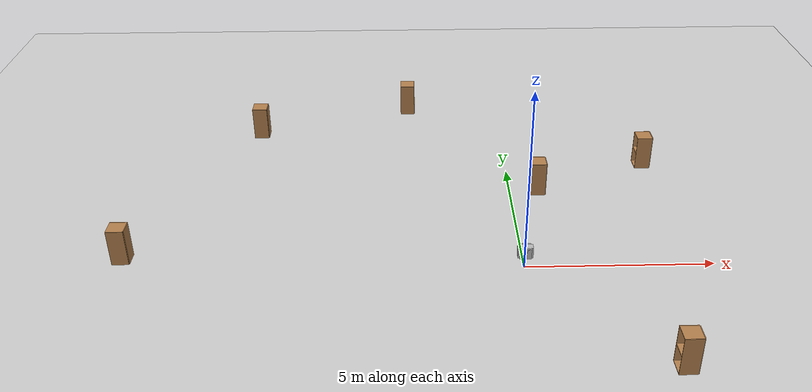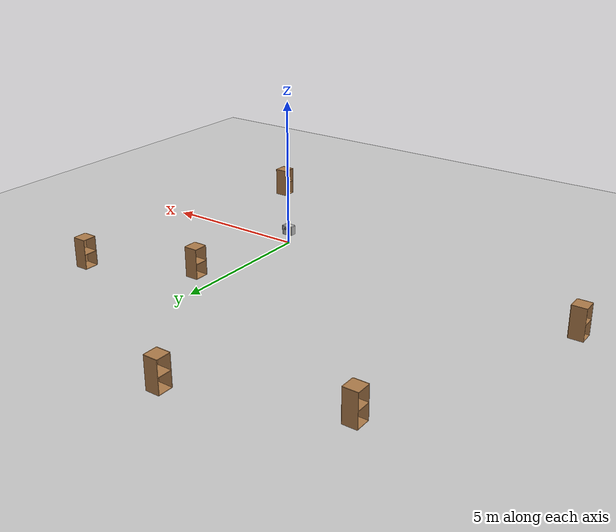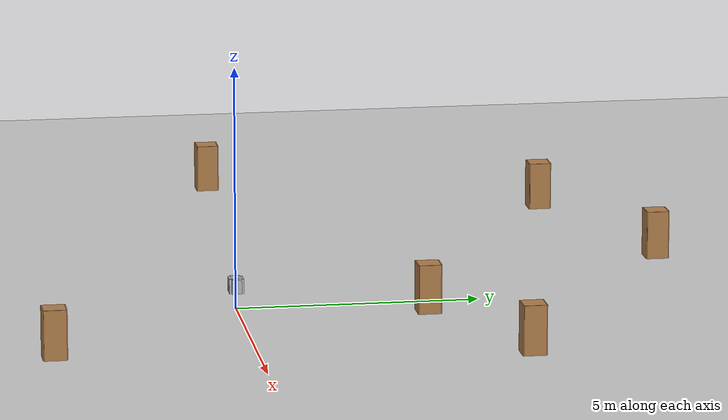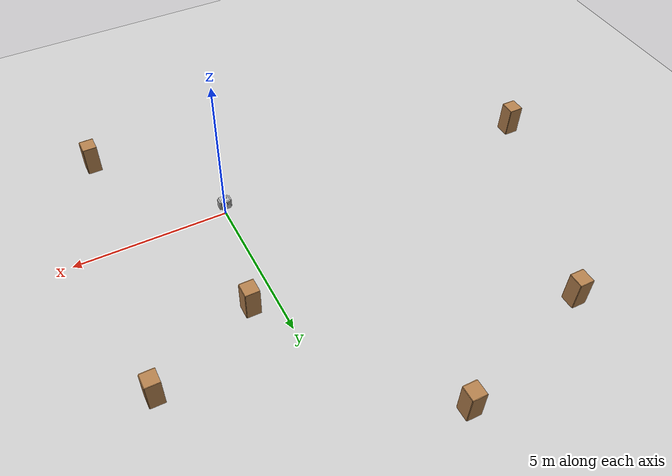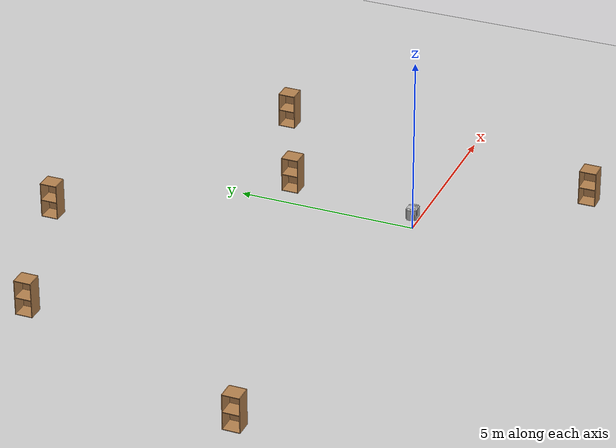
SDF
<sdf version="1.6">
 <world name="default">
  <light name="sun" type="directional">
   <pose>0 0 10 0 -0 0</pose>
   <diffuse>0.8 0.8 0.8 1</diffuse>
   <specular>0.2 0.2 0.2 1</specular>
   <attenuation>
    <range>1000</range>
    <constant>0.9</constant>
    <linear>0.01</linear>
    <quadratic>0.001</quadratic>
   </attenuation>
   <direction>-0.5 0.1 -0.9</direction>
  </light>
  <model name="animated_box">
   <pose>0 0 0.5 0 0 0</pose>
   <link name="link">
    <collision name="animated_box_collision"><geometry><box><size>0.2 0.3 0.3</size></box></geometry></collision>
    <visual name="visual"><geometry><box><size>0.2 0.3 0.3</size></box></geometry></visual>
    <inertial>
     <inertia><ixx>1</ixx><ixy>0</ixy><ixz>0</ixz><iyy>1</iyy><iyz>0</iyz><izz>1</izz></inertia>
     <mass>1</mass>
    </inertial>
    <gravity>0</gravity>
   </link>
   <plugin name="push_animate" filename="libbox_forward_movement7.so"/>
  </model>
  <model name="animated_box2">
   <pose>0 0 0.5 0 0 0</pose>
   <link name="link">
    <collision name="animated_box_collision2"><geometry><box><size>0.3 0.3 0.3</size></box></geometry></collision>
    <visual name="visual"><geometry><box><size>0.3 0.3 0.3</size></box></geometry></visual>
    <inertial>
     <inertia><ixx>1</ixx><ixy>0</ixy><ixz>0</ixz><iyy>1</iyy><iyz>0</iyz><izz>1</izz></inertia>
     <mass>1</mass>
    </inertial>
    <gravity>0</gravity>
   </link>
   <plugin name="push_animate2" filename="libbox_clockwise_movement.so"/>
  </model>
  <model name="animated_box3">
   <pose>0 0 0.5 0 0 0</pose>
   <link name="link">
    <collision name="animated_box_collision3"><geometry><box><size>0.3 0.2 0.3</size></box></geometry></collision>
    <visual name="visual"><geometry><box><size>0.3 0.2 0.3</size></box></geometry></visual>
    <inertial>
     <inertia><ixx>1</ixx><ixy>0</ixy><ixz>0</ixz><iyy>1</iyy><iyz>0</iyz><izz>1</izz></inertia>
     <mass>1</mass>
    </inertial>
    <gravity>0</gravity>
   </link>
   <plugin name="push_animate3" filename="libbox_clockwise_movement2.so"/>
  </model>
  <model name="animated_box4">
   <pose>0 0 0.5 0 0 0</pose>
   <link name="link">
    <collision name="animated_box_collision4"><geometry><box><size>0.4 0.2 0.3</size></box></geometry></collision>
    <visual name="visual"><geometry><box><size>0.4 0.2 0.3</size></box></geometry></visual>
    <inertial>
     <inertia><ixx>1</ixx><ixy>0</ixy><ixz>0</ixz><iyy>1</iyy><iyz>0</iyz><izz>1</izz></inertia>
     <mass>1</mass>
    </inertial>
    <gravity>0</gravity>
   </link>
   <plugin name="push_animate4" filename="libbox_forward_movement12.so"/>
  </model>
  <model name="animated_box5">
   <pose>0 0 0.5 0 0 0</pose>
   <link name="link">
    <collision name="animated_box_collision5"><geometry><box><size>0.3 0.2 0.3</size></box></geometry></collision>
    <visual name="visual"><geometry><box><size>0.3 0.2 0.3</size></box></geometry></visual>
    <inertial>
     <inertia><ixx>1</ixx><ixy>0</ixy><ixz>0</ixz><iyy>1</iyy><iyz>0</iyz><izz>1</izz></inertia>
     <mass>1</mass>
    </inertial>
    <gravity>0</gravity>
   </link>
   <plugin name="push_animate5" filename="libbox_forward_movement10.so"/>
  </model>
  <model name="ground_plane">
   <static>1</static>
   <link name="link">
    <collision name="collision">
     <geometry><plane><normal>0 0 1</normal><size>100 100</size></plane></geometry>
     <surface><friction><ode><mu>100</mu><mu2>50</mu2></ode></friction></surface>
    </collision>
    <visual name="visual">
     <cast_shadows>0</cast_shadows>
     <geometry><plane><normal>0 0 1</normal><size>100 100</size></plane></geometry>
     <material>
      <script><uri>file://media/materials/scripts/gazebo.material</uri><name>Gazebo/Grey</name></script>
     </material>
    </visual>
   </link>
  </model>
  <gravity>0 0 -9.8</gravity>
  <magnetic_field>6e-06 2.3e-05 -4.2e-05</magnetic_field>
  <atmosphere type="adiabatic"/>
  <physics name="default_physics" default="0" type="ode">
   <max_step_size>0.001</max_step_size>
   <real_time_factor>1</real_time_factor>
   <real_time_update_rate>1000</real_time_update_rate>
  </physics>
  <scene><ambient>0.4 0.4 0.4 1</ambient><background>0.7 0.7 0.7 1</background><shadows>1</shadows></scene>
  <audio><device>default</device></audio>
  <spherical_coordinates>
   <surface_model>EARTH_WGS84</surface_model>
   <latitude_deg>0</latitude_deg>
   <longitude_deg>0</longitude_deg>
   <elevation>0</elevation>
   <heading_deg>0</heading_deg>
  </spherical_coordinates>
  <model name="cabinet">
   <static>1</static>
   <link name="cabinet_bottom_plate">
    <inertial>
     <pose>0 0 -1 0 -0 0</pose>
     <inertia><ixx>2.05</ixx><ixy>0</ixy><ixz>0</ixz><iyy>2.05</iyy><iyz>0</iyz><izz>2.05</izz></inertia>
     <mass>25</mass>
    </inertial>
    <collision name="cabinet_bottom_plate_geom">
     <pose>0 0 0.01 0 -0 0</pose>
     <geometry><box><size>0.45 0.45 0.02</size></box></geometry>
    </collision>
    <visual name="cabinet_bottom_plate_geom_visual">
     <pose>0 0 0.01 0 -0 0</pose>
     <geometry><box><size>0.45 0.45 0.02</size></box></geometry>
     <material>
      <script><uri>file://media/materials/scripts/gazebo.material</uri><name>Gazebo/Wood</name></script>
     </material>
    </visual>
    <collision name="cabinet_bottom_plate_geom_cabinet_back_plate">
     <pose>0.235 0 0.51 0 -0 0</pose>
     <geometry><box><size>0.02 0.45 1.02</size></box></geometry>
    </collision>
    <visual name="cabinet_bottom_plate_geom_cabinet_back_plate_visual">
     <pose>0.235 0 0.51 0 -0 0</pose>
     <geometry><box><size>0.02 0.45 1.02</size></box></geometry>
     <material>
      <script><uri>file://media/materials/scripts/gazebo.material</uri><name>Gazebo/Wood</name></script>
     </material>
    </visual>
    <collision name="cabinet_bottom_plate_geom_cabinet_left_plate">
     <pose>0 0.235 0.51 0 -0 0</pose>
     <geometry><box><size>0.45 0.02 1.02</size></box></geometry>
    </collision>
    <visual name="cabinet_bottom_plate_geom_cabinet_left_plate_visual">
     <pose>0 0.235 0.51 0 -0 0</pose>
     <geometry><box><size>0.45 0.02 1.02</size></box></geometry>
     <material>
      <script><uri>file://media/materials/scripts/gazebo.material</uri><name>Gazebo/Wood</name></script>
     </material>
    </visual>
    <collision name="cabinet_bottom_plate_geom_cabinet_middle_plate">
     <pose>0 0 0.51 0 -0 0</pose>
     <geometry><box><size>0.45 0.45 0.02</size></box></geometry>
    </collision>
    <visual name="cabinet_bottom_plate_geom_cabinet_middle_plate_visual">
     <pose>0 0 0.51 0 -0 0</pose>
     <geometry><box><size>0.45 0.45 0.02</size></box></geometry>
     <material>
      <script><uri>file://media/materials/scripts/gazebo.material</uri><name>Gazebo/Wood</name></script>
     </material>
    </visual>
    <collision name="cabinet_bottom_plate_geom_cabinet_right_plate">
     <pose>0 -0.235 0.51 0 -0 0</pose>
     <geometry><box><size>0.45 0.02 1.02</size></box></geometry>
    </collision>
    <visual name="cabinet_bottom_plate_geom_cabinet_right_plate_visual">
     <pose>0 -0.235 0.51 0 -0 0</pose>
     <geometry><box><size>0.45 0.02 1.02</size></box></geometry>
     <material>
      <script><uri>file://media/materials/scripts/gazebo.material</uri><name>Gazebo/Wood</name></script>
     </material>
    </visual>
    <collision name="cabinet_bottom_plate_geom_cabinet_top_plate">
     <pose>0 0 1.01 0 -0 0</pose>
     <geometry><box><size>0.45 0.45 0.02</size></box></geometry>
    </collision>
    <visual name="cabinet_bottom_plate_geom_cabinet_top_plate_visual">
     <pose>0 0 1.01 0 -0 0</pose>
     <geometry><box><size>0.45 0.45 0.02</size></box></geometry>
     <material>
      <script><uri>file://media/materials/scripts/gazebo.material</uri><name>Gazebo/Wood</name></script>
     </material>
    </visual>
   </link>
   <pose>-7.76013 7.71308 0 0 -0 0</pose>
  </model>
  <model name="cabinet_0">
   <static>1</static>
   <link name="cabinet_bottom_plate">
    <inertial>
     <pose>0 0 -1 0 -0 0</pose>
     <inertia><ixx>2.05</ixx><ixy>0</ixy><ixz>0</ixz><iyy>2.05</iyy><iyz>0</iyz><izz>2.05</izz></inertia>
     <mass>25</mass>
    </inertial>
    <collision name="cabinet_bottom_plate_geom">
     <pose>0 0 0.01 0 -0 0</pose>
     <geometry><box><size>0.45 0.45 0.02</size></box></geometry>
    </collision>
    <visual name="cabinet_bottom_plate_geom_visual">
     <pose>0 0 0.01 0 -0 0</pose>
     <geometry><box><size>0.45 0.45 0.02</size></box></geometry>
     <material>
      <script><uri>file://media/materials/scripts/gazebo.material</uri><name>Gazebo/Wood</name></script>
     </material>
    </visual>
    <collision name="cabinet_bottom_plate_geom_cabinet_back_plate">
     <pose>0.235 0 0.51 0 -0 0</pose>
     <geometry><box><size>0.02 0.45 1.02</size></box></geometry>
    </collision>
    <visual name="cabinet_bottom_plate_geom_cabinet_back_plate_visual">
     <pose>0.235 0 0.51 0 -0 0</pose>
     <geometry><box><size>0.02 0.45 1.02</size></box></geometry>
     <material>
      <script><uri>file://media/materials/scripts/gazebo.material</uri><name>Gazebo/Wood</name></script>
     </material>
    </visual>
    <collision name="cabinet_bottom_plate_geom_cabinet_left_plate">
     <pose>0 0.235 0.51 0 -0 0</pose>
     <geometry><box><size>0.45 0.02 1.02</size></box></geometry>
    </collision>
    <visual name="cabinet_bottom_plate_geom_cabinet_left_plate_visual">
     <pose>0 0.235 0.51 0 -0 0</pose>
     <geometry><box><size>0.45 0.02 1.02</size></box></geometry>
     <material>
      <script><uri>file://media/materials/scripts/gazebo.material</uri><name>Gazebo/Wood</name></script>
     </material>
    </visual>
    <collision name="cabinet_bottom_plate_geom_cabinet_middle_plate">
     <pose>0 0 0.51 0 -0 0</pose>
     <geometry><box><size>0.45 0.45 0.02</size></box></geometry>
    </collision>
    <visual name="cabinet_bottom_plate_geom_cabinet_middle_plate_visual">
     <pose>0 0 0.51 0 -0 0</pose>
     <geometry><box><size>0.45 0.45 0.02</size></box></geometry>
     <material>
      <script><uri>file://media/materials/scripts/gazebo.material</uri><name>Gazebo/Wood</name></script>
     </material>
    </visual>
    <collision name="cabinet_bottom_plate_geom_cabinet_right_plate">
     <pose>0 -0.235 0.51 0 -0 0</pose>
     <geometry><box><size>0.45 0.02 1.02</size></box></geometry>
    </collision>
    <visual name="cabinet_bottom_plate_geom_cabinet_right_plate_visual">
     <pose>0 -0.235 0.51 0 -0 0</pose>
     <geometry><box><size>0.45 0.02 1.02</size></box></geometry>
     <material>
      <script><uri>file://media/materials/scripts/gazebo.material</uri><name>Gazebo/Wood</name></script>
     </material>
    </visual>
    <collision name="cabinet_bottom_plate_geom_cabinet_top_plate">
     <pose>0 0 1.01 0 -0 0</pose>
     <geometry><box><size>0.45 0.45 0.02</size></box></geometry>
    </collision>
    <visual name="cabinet_bottom_plate_geom_cabinet_top_plate_visual">
     <pose>0 0 1.01 0 -0 0</pose>
     <geometry><box><size>0.45 0.45 0.02</size></box></geometry>
     <material>
      <script><uri>file://media/materials/scripts/gazebo.material</uri><name>Gazebo/Wood</name></script>
     </material>
    </visual>
   </link>
   <pose>0.794169 3.84154 0 0 -0 0</pose>
  </model>
  <model name="cabinet_1">
   <static>1</static>
   <link name="cabinet_bottom_plate">
    <inertial>
     <pose>0 0 -1 0 -0 0</pose>
     <inertia><ixx>2.05</ixx><ixy>0</ixy><ixz>0</ixz><iyy>2.05</iyy><iyz>0</iyz><izz>2.05</izz></inertia>
     <mass>25</mass>
    </inertial>
    <collision name="cabinet_bottom_plate_geom">
     <pose>0 0 0.01 0 -0 0</pose>
     <geometry><box><size>0.45 0.45 0.02</size></box></geometry>
    </collision>
    <visual name="cabinet_bottom_plate_geom_visual">
     <pose>0 0 0.01 0 -0 0</pose>
     <geometry><box><size>0.45 0.45 0.02</size></box></geometry>
     <material>
      <script><uri>file://media/materials/scripts/gazebo.material</uri><name>Gazebo/Wood</name></script>
     </material>
    </visual>
    <collision name="cabinet_bottom_plate_geom_cabinet_back_plate">
     <pose>0.235 0 0.51 0 -0 0</pose>
     <geometry><box><size>0.02 0.45 1.02</size></box></geometry>
    </collision>
    <visual name="cabinet_bottom_plate_geom_cabinet_back_plate_visual">
     <pose>0.235 0 0.51 0 -0 0</pose>
     <geometry><box><size>0.02 0.45 1.02</size></box></geometry>
     <material>
      <script><uri>file://media/materials/scripts/gazebo.material</uri><name>Gazebo/Wood</name></script>
     </material>
    </visual>
    <collision name="cabinet_bottom_plate_geom_cabinet_left_plate">
     <pose>0 0.235 0.51 0 -0 0</pose>
     <geometry><box><size>0.45 0.02 1.02</size></box></geometry>
    </collision>
    <visual name="cabinet_bottom_plate_geom_cabinet_left_plate_visual">
     <pose>0 0.235 0.51 0 -0 0</pose>
     <geometry><box><size>0.45 0.02 1.02</size></box></geometry>
     <material>
      <script><uri>file://media/materials/scripts/gazebo.material</uri><name>Gazebo/Wood</name></script>
     </material>
    </visual>
    <collision name="cabinet_bottom_plate_geom_cabinet_middle_plate">
     <pose>0 0 0.51 0 -0 0</pose>
     <geometry><box><size>0.45 0.45 0.02</size></box></geometry>
    </collision>
    <visual name="cabinet_bottom_plate_geom_cabinet_middle_plate_visual">
     <pose>0 0 0.51 0 -0 0</pose>
     <geometry><box><size>0.45 0.45 0.02</size></box></geometry>
     <material>
      <script><uri>file://media/materials/scripts/gazebo.material</uri><name>Gazebo/Wood</name></script>
     </material>
    </visual>
    <collision name="cabinet_bottom_plate_geom_cabinet_right_plate">
     <pose>0 -0.235 0.51 0 -0 0</pose>
     <geometry><box><size>0.45 0.02 1.02</size></box></geometry>
    </collision>
    <visual name="cabinet_bottom_plate_geom_cabinet_right_plate_visual">
     <pose>0 -0.235 0.51 0 -0 0</pose>
     <geometry><box><size>0.45 0.02 1.02</size></box></geometry>
     <material>
      <script><uri>file://media/materials/scripts/gazebo.material</uri><name>Gazebo/Wood</name></script>
     </material>
    </visual>
    <collision name="cabinet_bottom_plate_geom_cabinet_top_plate">
     <pose>0 0 1.01 0 -0 0</pose>
     <geometry><box><size>0.45 0.45 0.02</size></box></geometry>
    </collision>
    <visual name="cabinet_bottom_plate_geom_cabinet_top_plate_visual">
     <pose>0 0 1.01 0 -0 0</pose>
     <geometry><box><size>0.45 0.45 0.02</size></box></geometry>
     <material>
      <script><uri>file://media/materials/scripts/gazebo.material</uri><name>Gazebo/Wood</name></script>
     </material>
    </visual>
   </link>
   <pose>-10.5687 0.643685 0 0 -0 0</pose>
  </model>
  <model name="cabinet_2">
   <static>1</static>
   <link name="cabinet_bottom_plate">
    <inertial>
     <pose>0 0 -1 0 -0 0</pose>
     <inertia><ixx>2.05</ixx><ixy>0</ixy><ixz>0</ixz><iyy>2.05</iyy><iyz>0</iyz><izz>2.05</izz></inertia>
     <mass>25</mass>
    </inertial>
    <collision name="cabinet_bottom_plate_geom">
     <pose>0 0 0.01 0 -0 0</pose>
     <geometry><box><size>0.45 0.45 0.02</size></box></geometry>
    </collision>
    <visual name="cabinet_bottom_plate_geom_visual">
     <pose>0 0 0.01 0 -0 0</pose>
     <geometry><box><size>0.45 0.45 0.02</size></box></geometry>
     <material>
      <script><uri>file://media/materials/scripts/gazebo.material</uri><name>Gazebo/Wood</name></script>
     </material>
    </visual>
    <collision name="cabinet_bottom_plate_geom_cabinet_back_plate">
     <pose>0.235 0 0.51 0 -0 0</pose>
     <geometry><box><size>0.02 0.45 1.02</size></box></geometry>
    </collision>
    <visual name="cabinet_bottom_plate_geom_cabinet_back_plate_visual">
     <pose>0.235 0 0.51 0 -0 0</pose>
     <geometry><box><size>0.02 0.45 1.02</size></box></geometry>
     <material>
      <script><uri>file://media/materials/scripts/gazebo.material</uri><name>Gazebo/Wood</name></script>
     </material>
    </visual>
    <collision name="cabinet_bottom_plate_geom_cabinet_left_plate">
     <pose>0 0.235 0.51 0 -0 0</pose>
     <geometry><box><size>0.45 0.02 1.02</size></box></geometry>
    </collision>
    <visual name="cabinet_bottom_plate_geom_cabinet_left_plate_visual">
     <pose>0 0.235 0.51 0 -0 0</pose>
     <geometry><box><size>0.45 0.02 1.02</size></box></geometry>
     <material>
      <script><uri>file://media/materials/scripts/gazebo.material</uri><name>Gazebo/Wood</name></script>
     </material>
    </visual>
    <collision name="cabinet_bottom_plate_geom_cabinet_middle_plate">
     <pose>0 0 0.51 0 -0 0</pose>
     <geometry><box><size>0.45 0.45 0.02</size></box></geometry>
    </collision>
    <visual name="cabinet_bottom_plate_geom_cabinet_middle_plate_visual">
     <pose>0 0 0.51 0 -0 0</pose>
     <geometry><box><size>0.45 0.45 0.02</size></box></geometry>
     <material>
      <script><uri>file://media/materials/scripts/gazebo.material</uri><name>Gazebo/Wood</name></script>
     </material>
    </visual>
    <collision name="cabinet_bottom_plate_geom_cabinet_right_plate">
     <pose>0 -0.235 0.51 0 -0 0</pose>
     <geometry><box><size>0.45 0.02 1.02</size></box></geometry>
    </collision>
    <visual name="cabinet_bottom_plate_geom_cabinet_right_plate_visual">
     <pose>0 -0.235 0.51 0 -0 0</pose>
     <geometry><box><size>0.45 0.02 1.02</size></box></geometry>
     <material>
      <script><uri>file://media/materials/scripts/gazebo.material</uri><name>Gazebo/Wood</name></script>
     </material>
    </visual>
    <collision name="cabinet_bottom_plate_geom_cabinet_top_plate">
     <pose>0 0 1.01 0 -0 0</pose>
     <geometry><box><size>0.45 0.45 0.02</size></box></geometry>
    </collision>
    <visual name="cabinet_bottom_plate_geom_cabinet_top_plate_visual">
     <pose>0 0 1.01 0 -0 0</pose>
     <geometry><box><size>0.45 0.45 0.02</size></box></geometry>
     <material>
      <script><uri>file://media/materials/scripts/gazebo.material</uri><name>Gazebo/Wood</name></script>
     </material>
    </visual>
   </link>
   <pose>3.19157 -3.97871 0 0 -0 0</pose>
  </model>
  <model name="cabinet_3">
   <static>1</static>
   <link name="cabinet_bottom_plate">
    <inertial>
     <pose>0 0 -1 0 -0 0</pose>
     <inertia><ixx>2.05</ixx><ixy>0</ixy><ixz>0</ixz><iyy>2.05</iyy><iyz>0</iyz><izz>2.05</izz></inertia>
     <mass>25</mass>
    </inertial>
    <collision name="cabinet_bottom_plate_geom">
     <pose>0 0 0.01 0 -0 0</pose>
     <geometry><box><size>0.45 0.45 0.02</size></box></geometry>
    </collision>
    <visual name="cabinet_bottom_plate_geom_visual">
     <pose>0 0 0.01 0 -0 0</pose>
     <geometry><box><size>0.45 0.45 0.02</size></box></geometry>
     <material>
      <script><uri>file://media/materials/scripts/gazebo.material</uri><name>Gazebo/Wood</name></script>
     </material>
    </visual>
    <collision name="cabinet_bottom_plate_geom_cabinet_back_plate">
     <pose>0.235 0 0.51 0 -0 0</pose>
     <geometry><box><size>0.02 0.45 1.02</size></box></geometry>
    </collision>
    <visual name="cabinet_bottom_plate_geom_cabinet_back_plate_visual">
     <pose>0.235 0 0.51 0 -0 0</pose>
     <geometry><box><size>0.02 0.45 1.02</size></box></geometry>
     <material>
      <script><uri>file://media/materials/scripts/gazebo.material</uri><name>Gazebo/Wood</name></script>
     </material>
    </visual>
    <collision name="cabinet_bottom_plate_geom_cabinet_left_plate">
     <pose>0 0.235 0.51 0 -0 0</pose>
     <geometry><box><size>0.45 0.02 1.02</size></box></geometry>
    </collision>
    <visual name="cabinet_bottom_plate_geom_cabinet_left_plate_visual">
     <pose>0 0.235 0.51 0 -0 0</pose>
     <geometry><box><size>0.45 0.02 1.02</size></box></geometry>
     <material>
      <script><uri>file://media/materials/scripts/gazebo.material</uri><name>Gazebo/Wood</name></script>
     </material>
    </visual>
    <collision name="cabinet_bottom_plate_geom_cabinet_middle_plate">
     <pose>0 0 0.51 0 -0 0</pose>
     <geometry><box><size>0.45 0.45 0.02</size></box></geometry>
    </collision>
    <visual name="cabinet_bottom_plate_geom_cabinet_middle_plate_visual">
     <pose>0 0 0.51 0 -0 0</pose>
     <geometry><box><size>0.45 0.45 0.02</size></box></geometry>
     <material>
      <script><uri>file://media/materials/scripts/gazebo.material</uri><name>Gazebo/Wood</name></script>
     </material>
    </visual>
    <collision name="cabinet_bottom_plate_geom_cabinet_right_plate">
     <pose>0 -0.235 0.51 0 -0 0</pose>
     <geometry><box><size>0.45 0.02 1.02</size></box></geometry>
    </collision>
    <visual name="cabinet_bottom_plate_geom_cabinet_right_plate_visual">
     <pose>0 -0.235 0.51 0 -0 0</pose>
     <geometry><box><size>0.45 0.02 1.02</size></box></geometry>
     <material>
      <script><uri>file://media/materials/scripts/gazebo.material</uri><name>Gazebo/Wood</name></script>
     </material>
    </visual>
    <collision name="cabinet_bottom_plate_geom_cabinet_top_plate">
     <pose>0 0 1.01 0 -0 0</pose>
     <geometry><box><size>0.45 0.45 0.02</size></box></geometry>
    </collision>
    <visual name="cabinet_bottom_plate_geom_cabinet_top_plate_visual">
     <pose>0 0 1.01 0 -0 0</pose>
     <geometry><box><size>0.45 0.45 0.02</size></box></geometry>
     <material>
      <script><uri>file://media/materials/scripts/gazebo.material</uri><name>Gazebo/Wood</name></script>
     </material>
    </visual>
   </link>
   <pose>4.2243 5.36545 0 0 -0 0</pose>
  </model>
  <model name="cabinet_4">
   <static>1</static>
   <link name="cabinet_bottom_plate">
    <inertial>
     <pose>0 0 -1 0 -0 0</pose>
     <inertia><ixx>2.05</ixx><ixy>0</ixy><ixz>0</ixz><iyy>2.05</iyy><iyz>0</iyz><izz>2.05</izz></inertia>
     <mass>25</mass>
    </inertial>
    <collision name="cabinet_bottom_plate_geom">
     <pose>0 0 0.01 0 -0 0</pose>
     <geometry><box><size>0.45 0.45 0.02</size></box></geometry>
    </collision>
    <visual name="cabinet_bottom_plate_geom_visual">
     <pose>0 0 0.01 0 -0 0</pose>
     <geometry><box><size>0.45 0.45 0.02</size></box></geometry>
     <material>
      <script><uri>file://media/materials/scripts/gazebo.material</uri><name>Gazebo/Wood</name></script>
     </material>
    </visual>
    <collision name="cabinet_bottom_plate_geom_cabinet_back_plate">
     <pose>0.235 0 0.51 0 -0 0</pose>
     <geometry><box><size>0.02 0.45 1.02</size></box></geometry>
    </collision>
    <visual name="cabinet_bottom_plate_geom_cabinet_back_plate_visual">
     <pose>0.235 0 0.51 0 -0 0</pose>
     <geometry><box><size>0.02 0.45 1.02</size></box></geometry>
     <material>
      <script><uri>file://media/materials/scripts/gazebo.material</uri><name>Gazebo/Wood</name></script>
     </material>
    </visual>
    <collision name="cabinet_bottom_plate_geom_cabinet_left_plate">
     <pose>0 0.235 0.51 0 -0 0</pose>
     <geometry><box><size>0.45 0.02 1.02</size></box></geometry>
    </collision>
    <visual name="cabinet_bottom_plate_geom_cabinet_left_plate_visual">
     <pose>0 0.235 0.51 0 -0 0</pose>
     <geometry><box><size>0.45 0.02 1.02</size></box></geometry>
     <material>
      <script><uri>file://media/materials/scripts/gazebo.material</uri><name>Gazebo/Wood</name></script>
     </material>
    </visual>
    <collision name="cabinet_bottom_plate_geom_cabinet_middle_plate">
     <pose>0 0 0.51 0 -0 0</pose>
     <geometry><box><size>0.45 0.45 0.02</size></box></geometry>
    </collision>
    <visual name="cabinet_bottom_plate_geom_cabinet_middle_plate_visual">
     <pose>0 0 0.51 0 -0 0</pose>
     <geometry><box><size>0.45 0.45 0.02</size></box></geometry>
     <material>
      <script><uri>file://media/materials/scripts/gazebo.material</uri><name>Gazebo/Wood</name></script>
     </material>
    </visual>
    <collision name="cabinet_bottom_plate_geom_cabinet_right_plate">
     <pose>0 -0.235 0.51 0 -0 0</pose>
     <geometry><box><size>0.45 0.02 1.02</size></box></geometry>
    </collision>
    <visual name="cabinet_bottom_plate_geom_cabinet_right_plate_visual">
     <pose>0 -0.235 0.51 0 -0 0</pose>
     <geometry><box><size>0.45 0.02 1.02</size></box></geometry>
     <material>
      <script><uri>file://media/materials/scripts/gazebo.material</uri><name>Gazebo/Wood</name></script>
     </material>
    </visual>
    <collision name="cabinet_bottom_plate_geom_cabinet_top_plate">
     <pose>0 0 1.01 0 -0 0</pose>
     <geometry><box><size>0.45 0.45 0.02</size></box></geometry>
    </collision>
    <visual name="cabinet_bottom_plate_geom_cabinet_top_plate_visual">
     <pose>0 0 1.01 0 -0 0</pose>
     <geometry><box><size>0.45 0.45 0.02</size></box></geometry>
     <material>
      <script><uri>file://media/materials/scripts/gazebo.material</uri><name>Gazebo/Wood</name></script>
     </material>
    </visual>
   </link>
   <pose>-2.98824 9.35428 0 0 -0 0</pose>
  </model>
 </world>
</sdf>
